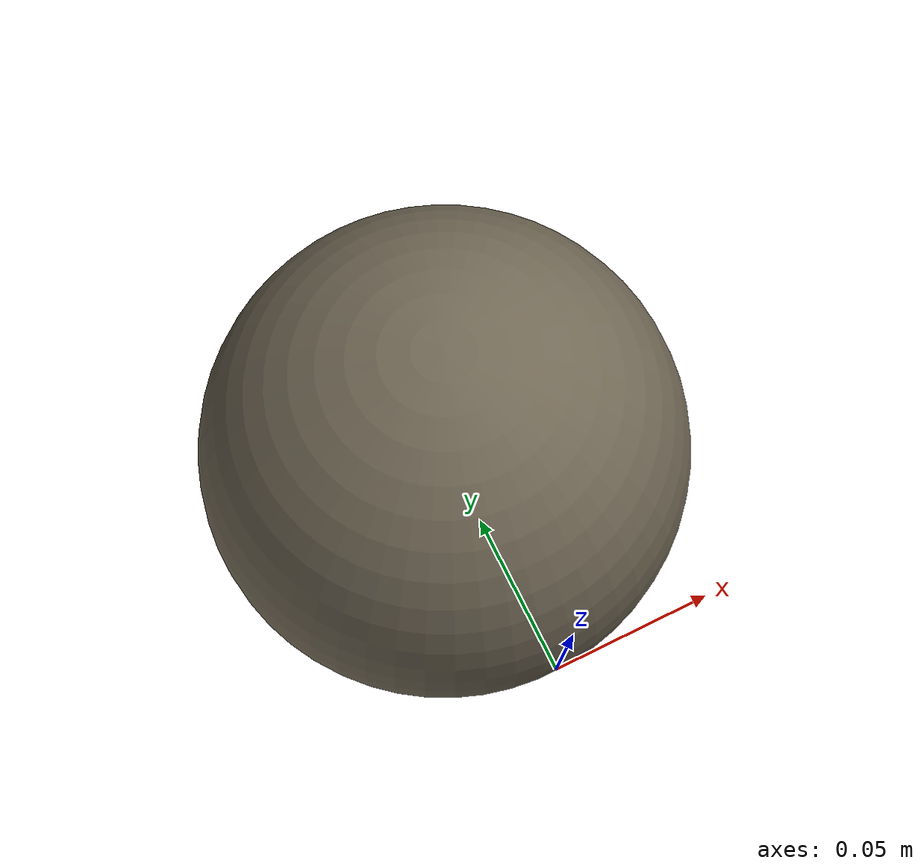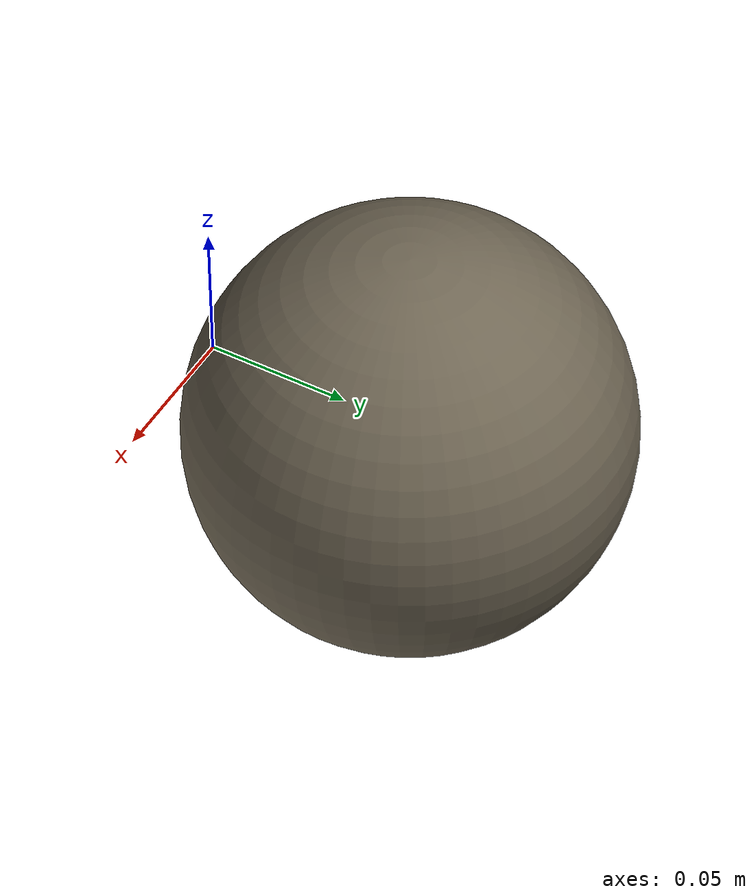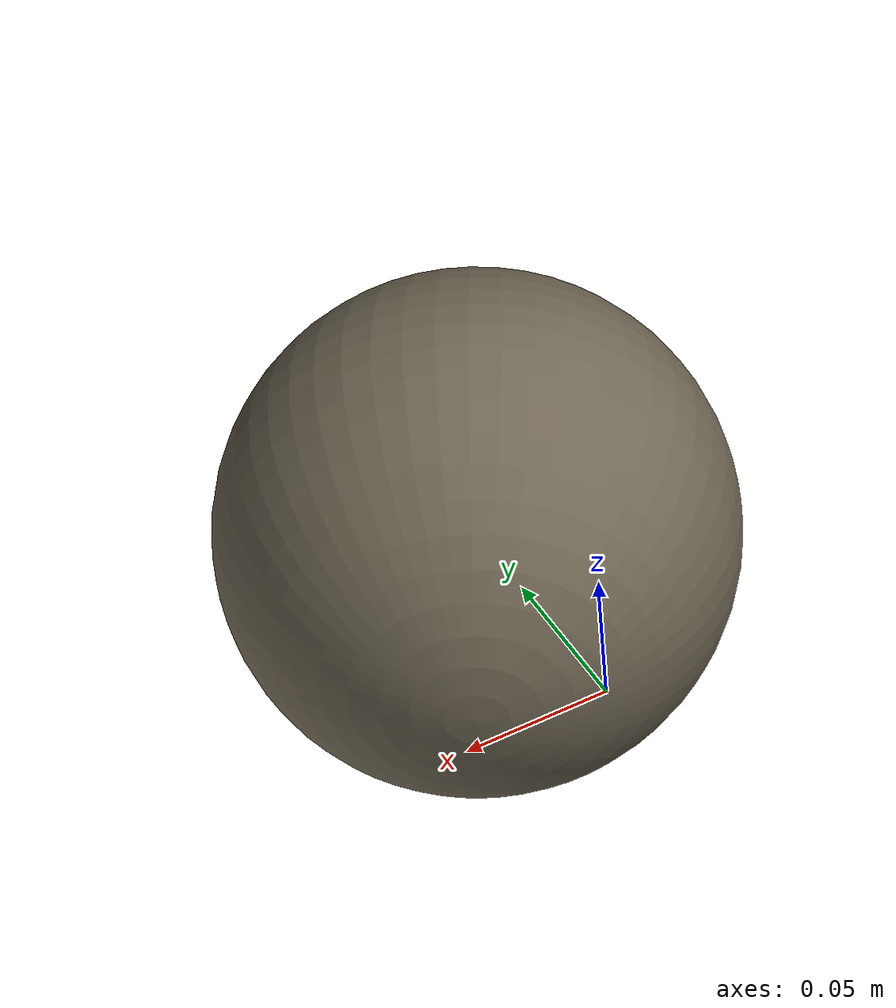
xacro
<?xml version="1.0"?>
<robot name="sphere15" xmlns:xacro="http://www.ros.org/wiki/xacro">

  <link name="sphere15_link">
    <visual>
      <geometry>
        <mesh filename="package://qm_description/meshes/sar/Sphere15.stl" scale="0.001 0.001 0.001"/>
      </geometry>
      <material name="gray">
          <color rgba="0.435 0.4 0.329 1"/>
      </material>
    </visual>
    <collision>
      <geometry>
        <mesh filename="package://qm_description/meshes/sar/Sphere15.stl" scale="0.001 0.001 0.001"/>
      </geometry>
    </collision>
    <inertial>
      <mass value="12.7"/>
      <inertia ixx="0.1143" ixy="0.0" ixz="0.0" iyy="0.1143" iyz="0.0" izz="0.1143"/>
    </inertial>
  </link>

  <gazebo reference="sphere15_link">
    <material>Gazebo/Grey</material>
  </gazebo>

</robot>
